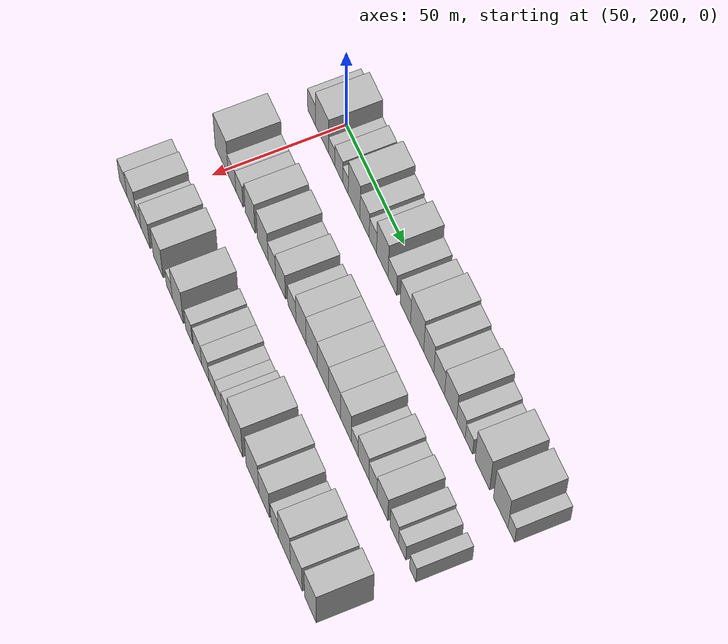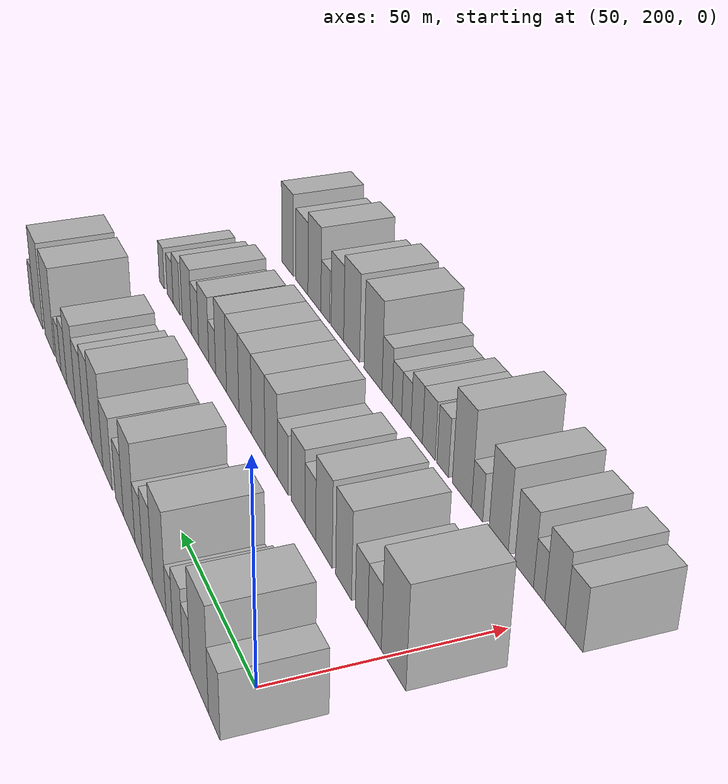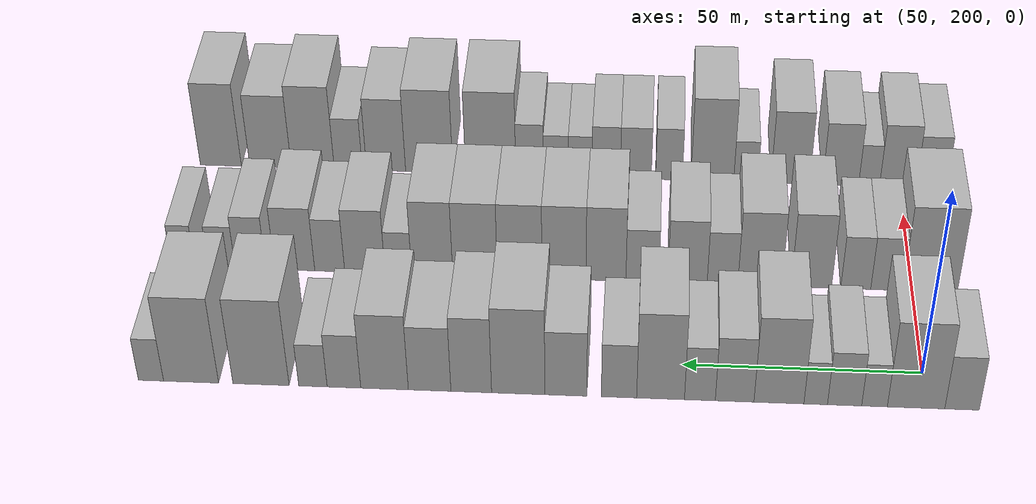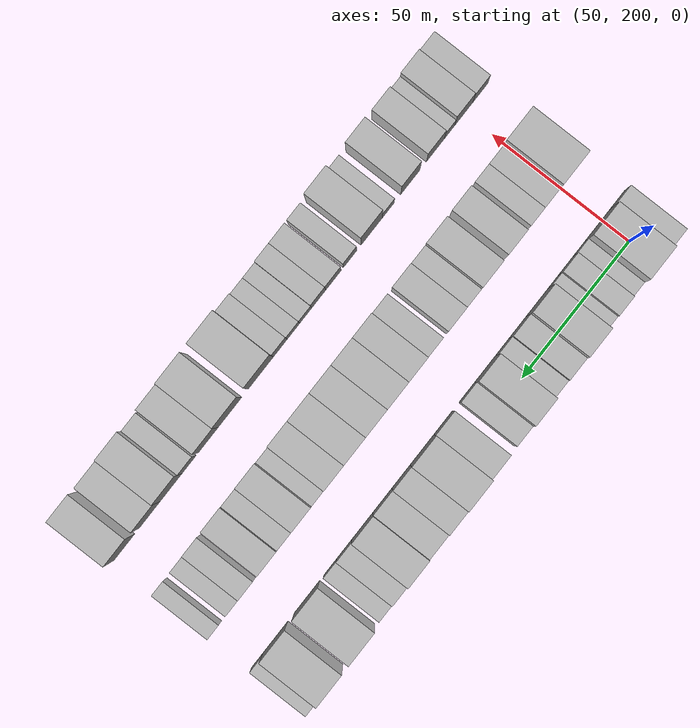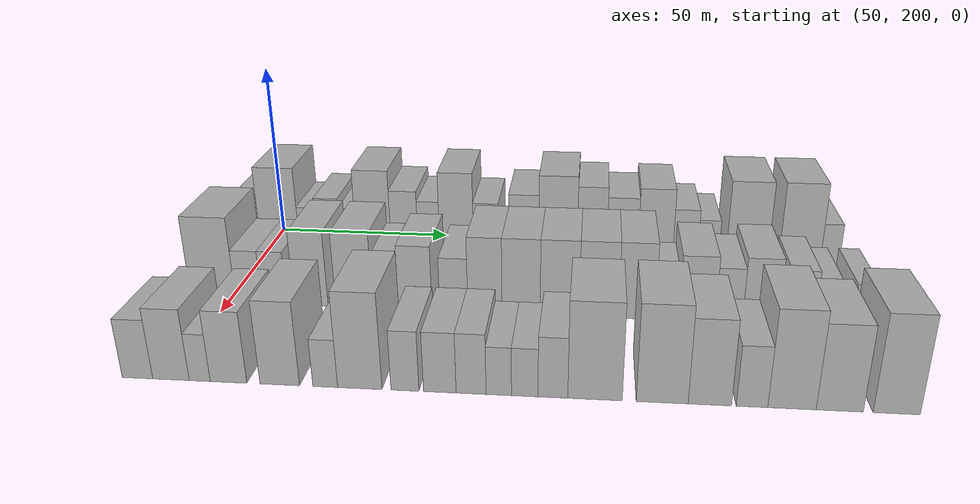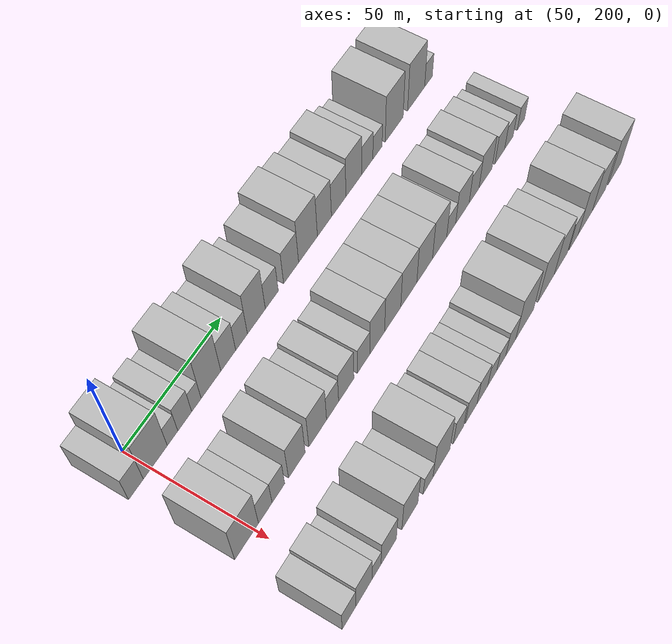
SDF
<sdf version="1.6">
 <world name="default">
  <model name="building_64">
   <static>1</static>
   <pose>50.0000 192.7966 0 0.000000 0.000000 0.000000</pose>
   <link name="link">
    <pose>0 0 7.50 0 0 0</pose>
    <collision name="collision"><geometry><box><size>20.0000 7.0280 15.0000</size></box></geometry></collision>
    <visual name="visual">
     <cast_shadows>0</cast_shadows>
     <geometry><box><size>20.0000 7.0280 15.0000</size></box></geometry>
     <material>
      <script>
       <uri>model://HANNAS_wall/materials/scripts</uri>
       <uri>model://HANNAS_wall/materials/textures</uri>
       <name>vrc/HANNAS_wall</name>
      </script>
     </material>
    </visual>
   </link>
  </model>
  <model name="building_65">
   <static>1</static>
   <pose>50.0000 202.1692 0 0.000000 0.000000 0.000000</pose>
   <link name="link">
    <pose>0 0 12.00 0 0 0</pose>
    <collision name="collision"><geometry><box><size>20.0000 11.7173 24.0000</size></box></geometry></collision>
    <visual name="visual">
     <cast_shadows>0</cast_shadows>
     <geometry><box><size>20.0000 11.7173 24.0000</size></box></geometry>
     <material>
      <script>
       <uri>model://HANNAS_wall/materials/scripts</uri>
       <uri>model://HANNAS_wall/materials/textures</uri>
       <name>vrc/HANNAS_wall</name>
      </script>
     </material>
    </visual>
   </link>
  </model>
  <model name="building_66">
   <static>1</static>
   <pose>50.0000 210.6475 0 0.000000 0.000000 0.000000</pose>
   <link name="link">
    <pose>0 0 6.00 0 0 0</pose>
    <collision name="collision"><geometry><box><size>20.0000 5.2393 12.0000</size></box></geometry></collision>
    <visual name="visual">
     <cast_shadows>0</cast_shadows>
     <geometry><box><size>20.0000 5.2393 12.0000</size></box></geometry>
     <material>
      <script>
       <uri>model://HANNAS_wall/materials/scripts</uri>
       <uri>model://HANNAS_wall/materials/textures</uri>
       <name>vrc/HANNAS_wall</name>
      </script>
     </material>
    </visual>
   </link>
  </model>
  <model name="building_67">
   <static>1</static>
   <pose>50.0000 216.7601 0 0.000000 0.000000 0.000000</pose>
   <link name="link">
    <pose>0 0 7.50 0 0 0</pose>
    <collision name="collision"><geometry><box><size>20.0000 6.9859 15.0000</size></box></geometry></collision>
    <visual name="visual">
     <cast_shadows>0</cast_shadows>
     <geometry><box><size>20.0000 6.9859 15.0000</size></box></geometry>
     <material>
      <script>
       <uri>model://HANNAS_wall/materials/scripts</uri>
       <uri>model://HANNAS_wall/materials/textures</uri>
       <name>vrc/HANNAS_wall</name>
      </script>
     </material>
    </visual>
   </link>
  </model>
  <model name="building_68">
   <static>1</static>
   <pose>50.0000 222.6624 0 0.000000 0.000000 0.000000</pose>
   <link name="link">
    <pose>0 0 6.00 0 0 0</pose>
    <collision name="collision"><geometry><box><size>20.0000 4.8188 12.0000</size></box></geometry></collision>
    <visual name="visual">
     <cast_shadows>0</cast_shadows>
     <geometry><box><size>20.0000 4.8188 12.0000</size></box></geometry>
     <material>
      <script>
       <uri>model://HANNAS_wall/materials/scripts</uri>
       <uri>model://HANNAS_wall/materials/textures</uri>
       <name>vrc/HANNAS_wall</name>
      </script>
     </material>
    </visual>
   </link>
  </model>
  <model name="building_69">
   <static>1</static>
   <pose>50.0000 230.1951 0 0.000000 0.000000 0.000000</pose>
   <link name="link">
    <pose>0 0 12.00 0 0 0</pose>
    <collision name="collision"><geometry><box><size>20.0000 10.2465 24.0000</size></box></geometry></collision>
    <visual name="visual">
     <cast_shadows>0</cast_shadows>
     <geometry><box><size>20.0000 10.2465 24.0000</size></box></geometry>
     <material>
      <script>
       <uri>model://HANNAS_wall/materials/scripts</uri>
       <uri>model://HANNAS_wall/materials/textures</uri>
       <name>vrc/HANNAS_wall</name>
      </script>
     </material>
    </visual>
   </link>
  </model>
  <model name="building_70">
   <static>1</static>
   <pose>50.0000 239.2846 0 0.000000 0.000000 0.000000</pose>
   <link name="link">
    <pose>0 0 9.00 0 0 0</pose>
    <collision name="collision"><geometry><box><size>20.0000 7.9326 18.0000</size></box></geometry></collision>
    <visual name="visual">
     <cast_shadows>0</cast_shadows>
     <geometry><box><size>20.0000 7.9326 18.0000</size></box></geometry>
     <material>
      <script>
       <uri>model://HANNAS_wall/materials/scripts</uri>
       <uri>model://HANNAS_wall/materials/textures</uri>
       <name>vrc/HANNAS_wall</name>
      </script>
     </material>
    </visual>
   </link>
  </model>
  <model name="building_71">
   <static>1</static>
   <pose>50.0000 246.4208 0 0.000000 0.000000 0.000000</pose>
   <link name="link">
    <pose>0 0 7.50 0 0 0</pose>
    <collision name="collision"><geometry><box><size>20.0000 6.3398 15.0000</size></box></geometry></collision>
    <visual name="visual">
     <cast_shadows>0</cast_shadows>
     <geometry><box><size>20.0000 6.3398 15.0000</size></box></geometry>
     <material>
      <script>
       <uri>model://HANNAS_wall/materials/scripts</uri>
       <uri>model://HANNAS_wall/materials/textures</uri>
       <name>vrc/HANNAS_wall</name>
      </script>
     </material>
    </visual>
   </link>
  </model>
  <model name="building_72">
   <static>1</static>
   <pose>50.0000 254.5148 0 0.000000 0.000000 0.000000</pose>
   <link name="link">
    <pose>0 0 12.00 0 0 0</pose>
    <collision name="collision"><geometry><box><size>20.0000 9.8482 24.0000</size></box></geometry></collision>
    <visual name="visual">
     <cast_shadows>0</cast_shadows>
     <geometry><box><size>20.0000 9.8482 24.0000</size></box></geometry>
     <material>
      <script>
       <uri>model://HANNAS_wall/materials/scripts</uri>
       <uri>model://HANNAS_wall/materials/textures</uri>
       <name>vrc/HANNAS_wall</name>
      </script>
     </material>
    </visual>
   </link>
  </model>
  <model name="building_73">
   <static>1</static>
   <pose>50.0000 263.0748 0 0.000000 0.000000 0.000000</pose>
   <link name="link">
    <pose>0 0 7.50 0 0 0</pose>
    <collision name="collision"><geometry><box><size>20.0000 7.2717 15.0000</size></box></geometry></collision>
    <visual name="visual">
     <cast_shadows>0</cast_shadows>
     <geometry><box><size>20.0000 7.2717 15.0000</size></box></geometry>
     <material>
      <script>
       <uri>model://HANNAS_wall/materials/scripts</uri>
       <uri>model://HANNAS_wall/materials/textures</uri>
       <name>vrc/HANNAS_wall</name>
      </script>
     </material>
    </visual>
   </link>
  </model>
  <model name="building_74">
   <static>1</static>
   <pose>50.0000 274.0269 0 0.000000 0.000000 0.000000</pose>
   <link name="link">
    <pose>0 0 9.00 0 0 0</pose>
    <collision name="collision"><geometry><box><size>20.0000 8.6325 18.0000</size></box></geometry></collision>
    <visual name="visual">
     <cast_shadows>0</cast_shadows>
     <geometry><box><size>20.0000 8.6325 18.0000</size></box></geometry>
     <material>
      <script>
       <uri>model://HANNAS_wall/materials/scripts</uri>
       <uri>model://HANNAS_wall/materials/textures</uri>
       <name>vrc/HANNAS_wall</name>
      </script>
     </material>
    </visual>
   </link>
  </model>
  <model name="building_75">
   <static>1</static>
   <pose>50.0000 283.8667 0 0.000000 0.000000 0.000000</pose>
   <link name="link">
    <pose>0 0 12.00 0 0 0</pose>
    <collision name="collision"><geometry><box><size>20.0000 11.0470 24.0000</size></box></geometry></collision>
    <visual name="visual">
     <cast_shadows>0</cast_shadows>
     <geometry><box><size>20.0000 11.0470 24.0000</size></box></geometry>
     <material>
      <script>
       <uri>model://HANNAS_wall/materials/scripts</uri>
       <uri>model://HANNAS_wall/materials/textures</uri>
       <name>vrc/HANNAS_wall</name>
      </script>
     </material>
    </visual>
   </link>
  </model>
  <model name="building_76">
   <static>1</static>
   <pose>50.0000 293.6061 0 0.000000 0.000000 0.000000</pose>
   <link name="link">
    <pose>0 0 10.50 0 0 0</pose>
    <collision name="collision"><geometry><box><size>20.0000 8.4318 21.0000</size></box></geometry></collision>
    <visual name="visual">
     <cast_shadows>0</cast_shadows>
     <geometry><box><size>20.0000 8.4318 21.0000</size></box></geometry>
     <material>
      <script>
       <uri>model://HANNAS_wall/materials/scripts</uri>
       <uri>model://HANNAS_wall/materials/textures</uri>
       <name>vrc/HANNAS_wall</name>
      </script>
     </material>
    </visual>
   </link>
  </model>
  <model name="building_77">
   <static>1</static>
   <pose>50.0000 302.2431 0 0.000000 0.000000 0.000000</pose>
   <link name="link">
    <pose>0 0 9.00 0 0 0</pose>
    <collision name="collision"><geometry><box><size>20.0000 8.8422 18.0000</size></box></geometry></collision>
    <visual name="visual">
     <cast_shadows>0</cast_shadows>
     <geometry><box><size>20.0000 8.8422 18.0000</size></box></geometry>
     <material>
      <script>
       <uri>model://HANNAS_wall/materials/scripts</uri>
       <uri>model://HANNAS_wall/materials/textures</uri>
       <name>vrc/HANNAS_wall</name>
      </script>
     </material>
    </visual>
   </link>
  </model>
  <model name="building_78">
   <static>1</static>
   <pose>50.0000 311.5995 0 0.000000 0.000000 0.000000</pose>
   <link name="link">
    <pose>0 0 10.50 0 0 0</pose>
    <collision name="collision"><geometry><box><size>20.0000 9.8705 21.0000</size></box></geometry></collision>
    <visual name="visual">
     <cast_shadows>0</cast_shadows>
     <geometry><box><size>20.0000 9.8705 21.0000</size></box></geometry>
     <material>
      <script>
       <uri>model://HANNAS_wall/materials/scripts</uri>
       <uri>model://HANNAS_wall/materials/textures</uri>
       <name>vrc/HANNAS_wall</name>
      </script>
     </material>
    </visual>
   </link>
  </model>
  <model name="building_79">
   <static>1</static>
   <pose>50.0000 320.0405 0 0.000000 0.000000 0.000000</pose>
   <link name="link">
    <pose>0 0 7.50 0 0 0</pose>
    <collision name="collision"><geometry><box><size>20.0000 7.0115 15.0000</size></box></geometry></collision>
    <visual name="visual">
     <cast_shadows>0</cast_shadows>
     <geometry><box><size>20.0000 7.0115 15.0000</size></box></geometry>
     <material>
      <script>
       <uri>model://HANNAS_wall/materials/scripts</uri>
       <uri>model://HANNAS_wall/materials/textures</uri>
       <name>vrc/HANNAS_wall</name>
      </script>
     </material>
    </visual>
   </link>
  </model>
  <model name="building_80">
   <static>1</static>
   <pose>50.0000 326.5141 0 0.000000 0.000000 0.000000</pose>
   <link name="link">
    <pose>0 0 6.00 0 0 0</pose>
    <collision name="collision"><geometry><box><size>20.0000 5.9358 12.0000</size></box></geometry></collision>
    <visual name="visual">
     <cast_shadows>0</cast_shadows>
     <geometry><box><size>20.0000 5.9358 12.0000</size></box></geometry>
     <material>
      <script>
       <uri>model://HANNAS_wall/materials/scripts</uri>
       <uri>model://HANNAS_wall/materials/textures</uri>
       <name>vrc/HANNAS_wall</name>
      </script>
     </material>
    </visual>
   </link>
  </model>
  <model name="building_81">
   <static>1</static>
   <pose>50.0000 337.3531 0 0.000000 0.000000 0.000000</pose>
   <link name="link">
    <pose>0 0 12.00 0 0 0</pose>
    <collision name="collision"><geometry><box><size>20.0000 11.7420 24.0000</size></box></geometry></collision>
    <visual name="visual">
     <cast_shadows>0</cast_shadows>
     <geometry><box><size>20.0000 11.7420 24.0000</size></box></geometry>
     <material>
      <script>
       <uri>model://HANNAS_wall/materials/scripts</uri>
       <uri>model://HANNAS_wall/materials/textures</uri>
       <name>vrc/HANNAS_wall</name>
      </script>
     </material>
    </visual>
   </link>
  </model>
  <model name="building_82">
   <static>1</static>
   <pose>50.0000 351.9843 0 0.000000 0.000000 0.000000</pose>
   <link name="link">
    <pose>0 0 12.00 0 0 0</pose>
    <collision name="collision"><geometry><box><size>20.0000 11.5206 24.0000</size></box></geometry></collision>
    <visual name="visual">
     <cast_shadows>0</cast_shadows>
     <geometry><box><size>20.0000 11.5206 24.0000</size></box></geometry>
     <material>
      <script>
       <uri>model://HANNAS_wall/materials/scripts</uri>
       <uri>model://HANNAS_wall/materials/textures</uri>
       <name>vrc/HANNAS_wall</name>
      </script>
     </material>
    </visual>
   </link>
  </model>
  <model name="building_83">
   <static>1</static>
   <pose>50.0000 360.3884 0 0.000000 0.000000 0.000000</pose>
   <link name="link">
    <pose>0 0 6.00 0 0 0</pose>
    <collision name="collision"><geometry><box><size>20.0000 5.2876 12.0000</size></box></geometry></collision>
    <visual name="visual">
     <cast_shadows>0</cast_shadows>
     <geometry><box><size>20.0000 5.2876 12.0000</size></box></geometry>
     <material>
      <script>
       <uri>model://HANNAS_wall/materials/scripts</uri>
       <uri>model://HANNAS_wall/materials/textures</uri>
       <name>vrc/HANNAS_wall</name>
      </script>
     </material>
    </visual>
   </link>
  </model>
  <model name="building_142">
   <static>1</static>
   <pose>85.0000 196.2128 0 0.000000 0.000000 0.000000</pose>
   <link name="link">
    <pose>0 0 12.00 0 0 0</pose>
    <collision name="collision"><geometry><box><size>20.0000 11.8825 24.0000</size></box></geometry></collision>
    <visual name="visual">
     <cast_shadows>0</cast_shadows>
     <geometry><box><size>20.0000 11.8825 24.0000</size></box></geometry>
     <material>
      <script>
       <uri>model://HANNAS_wall/materials/scripts</uri>
       <uri>model://HANNAS_wall/materials/textures</uri>
       <name>vrc/HANNAS_wall</name>
      </script>
     </material>
    </visual>
   </link>
  </model>
  <model name="building_143">
   <static>1</static>
   <pose>85.0000 205.6216 0 0.000000 0.000000 0.000000</pose>
   <link name="link">
    <pose>0 0 7.50 0 0 0</pose>
    <collision name="collision"><geometry><box><size>20.0000 6.9351 15.0000</size></box></geometry></collision>
    <visual name="visual">
     <cast_shadows>0</cast_shadows>
     <geometry><box><size>20.0000 6.9351 15.0000</size></box></geometry>
     <material>
      <script>
       <uri>model://HANNAS_wall/materials/scripts</uri>
       <uri>model://HANNAS_wall/materials/textures</uri>
       <name>vrc/HANNAS_wall</name>
      </script>
     </material>
    </visual>
   </link>
  </model>
  <model name="building_144">
   <static>1</static>
   <pose>85.0000 212.3532 0 0.000000 0.000000 0.000000</pose>
   <link name="link">
    <pose>0 0 7.50 0 0 0</pose>
    <collision name="collision"><geometry><box><size>20.0000 6.5281 15.0000</size></box></geometry></collision>
    <visual name="visual">
     <cast_shadows>0</cast_shadows>
     <geometry><box><size>20.0000 6.5281 15.0000</size></box></geometry>
     <material>
      <script>
       <uri>model://HANNAS_wall/materials/scripts</uri>
       <uri>model://HANNAS_wall/materials/textures</uri>
       <name>vrc/HANNAS_wall</name>
      </script>
     </material>
    </visual>
   </link>
  </model>
  <model name="building_145">
   <static>1</static>
   <pose>85.0000 222.0366 0 0.000000 0.000000 0.000000</pose>
   <link name="link">
    <pose>0 0 10.50 0 0 0</pose>
    <collision name="collision"><geometry><box><size>20.0000 8.8387 21.0000</size></box></geometry></collision>
    <visual name="visual">
     <cast_shadows>0</cast_shadows>
     <geometry><box><size>20.0000 8.8387 21.0000</size></box></geometry>
     <material>
      <script>
       <uri>model://HANNAS_wall/materials/scripts</uri>
       <uri>model://HANNAS_wall/materials/textures</uri>
       <name>vrc/HANNAS_wall</name>
      </script>
     </material>
    </visual>
   </link>
  </model>
  <model name="building_146">
   <static>1</static>
   <pose>85.0000 233.2596 0 0.000000 0.000000 0.000000</pose>
   <link name="link">
    <pose>0 0 10.50 0 0 0</pose>
    <collision name="collision"><geometry><box><size>20.0000 9.6074 21.0000</size></box></geometry></collision>
    <visual name="visual">
     <cast_shadows>0</cast_shadows>
     <geometry><box><size>20.0000 9.6074 21.0000</size></box></geometry>
     <material>
      <script>
       <uri>model://HANNAS_wall/materials/scripts</uri>
       <uri>model://HANNAS_wall/materials/textures</uri>
       <name>vrc/HANNAS_wall</name>
      </script>
     </material>
    </visual>
   </link>
  </model>
  <model name="building_147">
   <static>1</static>
   <pose>85.0000 241.4175 0 0.000000 0.000000 0.000000</pose>
   <link name="link">
    <pose>0 0 7.50 0 0 0</pose>
    <collision name="collision"><geometry><box><size>20.0000 6.7082 15.0000</size></box></geometry></collision>
    <visual name="visual">
     <cast_shadows>0</cast_shadows>
     <geometry><box><size>20.0000 6.7082 15.0000</size></box></geometry>
     <material>
      <script>
       <uri>model://HANNAS_wall/materials/scripts</uri>
       <uri>model://HANNAS_wall/materials/textures</uri>
       <name>vrc/HANNAS_wall</name>
      </script>
     </material>
    </visual>
   </link>
  </model>
  <model name="building_148">
   <static>1</static>
   <pose>85.0000 249.0754 0 0.000000 0.000000 0.000000</pose>
   <link name="link">
    <pose>0 0 9.00 0 0 0</pose>
    <collision name="collision"><geometry><box><size>20.0000 8.6076 18.0000</size></box></geometry></collision>
    <visual name="visual">
     <cast_shadows>0</cast_shadows>
     <geometry><box><size>20.0000 8.6076 18.0000</size></box></geometry>
     <material>
      <script>
       <uri>model://HANNAS_wall/materials/scripts</uri>
       <uri>model://HANNAS_wall/materials/textures</uri>
       <name>vrc/HANNAS_wall</name>
      </script>
     </material>
    </visual>
   </link>
  </model>
  <model name="building_149">
   <static>1</static>
   <pose>85.0000 258.9748 0 0.000000 0.000000 0.000000</pose>
   <link name="link">
    <pose>0 0 7.50 0 0 0</pose>
    <collision name="collision"><geometry><box><size>20.0000 7.1914 15.0000</size></box></geometry></collision>
    <visual name="visual">
     <cast_shadows>0</cast_shadows>
     <geometry><box><size>20.0000 7.1914 15.0000</size></box></geometry>
     <material>
      <script>
       <uri>model://HANNAS_wall/materials/scripts</uri>
       <uri>model://HANNAS_wall/materials/textures</uri>
       <name>vrc/HANNAS_wall</name>
      </script>
     </material>
    </visual>
   </link>
  </model>
  <model name="building_150">
   <static>1</static>
   <pose>85.0000 266.9386 0 0.000000 0.000000 0.000000</pose>
   <link name="link">
    <pose>0 0 10.50 0 0 0</pose>
    <collision name="collision"><geometry><box><size>20.0000 8.7362 21.0000</size></box></geometry></collision>
    <visual name="visual">
     <cast_shadows>0</cast_shadows>
     <geometry><box><size>20.0000 8.7362 21.0000</size></box></geometry>
     <material>
      <script>
       <uri>model://HANNAS_wall/materials/scripts</uri>
       <uri>model://HANNAS_wall/materials/textures</uri>
       <name>vrc/HANNAS_wall</name>
      </script>
     </material>
    </visual>
   </link>
  </model>
  <model name="building_151">
   <static>1</static>
   <pose>85.0000 276.1476 0 0.000000 0.000000 0.000000</pose>
   <link name="link">
    <pose>0 0 10.50 0 0 0</pose>
    <collision name="collision"><geometry><box><size>20.0000 9.6817 21.0000</size></box></geometry></collision>
    <visual name="visual">
     <cast_shadows>0</cast_shadows>
     <geometry><box><size>20.0000 9.6817 21.0000</size></box></geometry>
     <material>
      <script>
       <uri>model://HANNAS_wall/materials/scripts</uri>
       <uri>model://HANNAS_wall/materials/textures</uri>
       <name>vrc/HANNAS_wall</name>
      </script>
     </material>
    </visual>
   </link>
  </model>
  <model name="building_152">
   <static>1</static>
   <pose>85.0000 285.9078 0 0.000000 0.000000 0.000000</pose>
   <link name="link">
    <pose>0 0 10.50 0 0 0</pose>
    <collision name="collision"><geometry><box><size>20.0000 9.8389 21.0000</size></box></geometry></collision>
    <visual name="visual">
     <cast_shadows>0</cast_shadows>
     <geometry><box><size>20.0000 9.8389 21.0000</size></box></geometry>
     <material>
      <script>
       <uri>model://HANNAS_wall/materials/scripts</uri>
       <uri>model://HANNAS_wall/materials/textures</uri>
       <name>vrc/HANNAS_wall</name>
      </script>
     </material>
    </visual>
   </link>
  </model>
  <model name="building_153">
   <static>1</static>
   <pose>85.0000 295.7514 0 0.000000 0.000000 0.000000</pose>
   <link name="link">
    <pose>0 0 10.50 0 0 0</pose>
    <collision name="collision"><geometry><box><size>20.0000 9.8482 21.0000</size></box></geometry></collision>
    <visual name="visual">
     <cast_shadows>0</cast_shadows>
     <geometry><box><size>20.0000 9.8482 21.0000</size></box></geometry>
     <material>
      <script>
       <uri>model://HANNAS_wall/materials/scripts</uri>
       <uri>model://HANNAS_wall/materials/textures</uri>
       <name>vrc/HANNAS_wall</name>
      </script>
     </material>
    </visual>
   </link>
  </model>
  <model name="building_154">
   <static>1</static>
   <pose>85.0000 305.2164 0 0.000000 0.000000 0.000000</pose>
   <link name="link">
    <pose>0 0 10.50 0 0 0</pose>
    <collision name="collision"><geometry><box><size>20.0000 9.0819 21.0000</size></box></geometry></collision>
    <visual name="visual">
     <cast_shadows>0</cast_shadows>
     <geometry><box><size>20.0000 9.0819 21.0000</size></box></geometry>
     <material>
      <script>
       <uri>model://HANNAS_wall/materials/scripts</uri>
       <uri>model://HANNAS_wall/materials/textures</uri>
       <name>vrc/HANNAS_wall</name>
      </script>
     </material>
    </visual>
   </link>
  </model>
  <model name="building_155">
   <static>1</static>
   <pose>85.0000 312.7022 0 0.000000 0.000000 0.000000</pose>
   <link name="link">
    <pose>0 0 6.00 0 0 0</pose>
    <collision name="collision"><geometry><box><size>20.0000 5.8899 12.0000</size></box></geometry></collision>
    <visual name="visual">
     <cast_shadows>0</cast_shadows>
     <geometry><box><size>20.0000 5.8899 12.0000</size></box></geometry>
     <material>
      <script>
       <uri>model://HANNAS_wall/materials/scripts</uri>
       <uri>model://HANNAS_wall/materials/textures</uri>
       <name>vrc/HANNAS_wall</name>
      </script>
     </material>
    </visual>
   </link>
  </model>
  <model name="building_156">
   <static>1</static>
   <pose>85.0000 320.1122 0 0.000000 0.000000 0.000000</pose>
   <link name="link">
    <pose>0 0 9.00 0 0 0</pose>
    <collision name="collision"><geometry><box><size>20.0000 8.9300 18.0000</size></box></geometry></collision>
    <visual name="visual">
     <cast_shadows>0</cast_shadows>
     <geometry><box><size>20.0000 8.9300 18.0000</size></box></geometry>
     <material>
      <script>
       <uri>model://HANNAS_wall/materials/scripts</uri>
       <uri>model://HANNAS_wall/materials/textures</uri>
       <name>vrc/HANNAS_wall</name>
      </script>
     </material>
    </visual>
   </link>
  </model>
  <model name="building_157">
   <static>1</static>
   <pose>85.0000 327.8973 0 0.000000 0.000000 0.000000</pose>
   <link name="link">
    <pose>0 0 7.50 0 0 0</pose>
    <collision name="collision"><geometry><box><size>20.0000 6.6402 15.0000</size></box></geometry></collision>
    <visual name="visual">
     <cast_shadows>0</cast_shadows>
     <geometry><box><size>20.0000 6.6402 15.0000</size></box></geometry>
     <material>
      <script>
       <uri>model://HANNAS_wall/materials/scripts</uri>
       <uri>model://HANNAS_wall/materials/textures</uri>
       <name>vrc/HANNAS_wall</name>
      </script>
     </material>
    </visual>
   </link>
  </model>
  <model name="building_158">
   <static>1</static>
   <pose>85.0000 335.6396 0 0.000000 0.000000 0.000000</pose>
   <link name="link">
    <pose>0 0 9.00 0 0 0</pose>
    <collision name="collision"><geometry><box><size>20.0000 8.8443 18.0000</size></box></geometry></collision>
    <visual name="visual">
     <cast_shadows>0</cast_shadows>
     <geometry><box><size>20.0000 8.8443 18.0000</size></box></geometry>
     <material>
      <script>
       <uri>model://HANNAS_wall/materials/scripts</uri>
       <uri>model://HANNAS_wall/materials/textures</uri>
       <name>vrc/HANNAS_wall</name>
      </script>
     </material>
    </visual>
   </link>
  </model>
  <model name="building_159">
   <static>1</static>
   <pose>85.0000 345.4775 0 0.000000 0.000000 0.000000</pose>
   <link name="link">
    <pose>0 0 7.50 0 0 0</pose>
    <collision name="collision"><geometry><box><size>20.0000 6.8314 15.0000</size></box></geometry></collision>
    <visual name="visual">
     <cast_shadows>0</cast_shadows>
     <geometry><box><size>20.0000 6.8314 15.0000</size></box></geometry>
     <material>
      <script>
       <uri>model://HANNAS_wall/materials/scripts</uri>
       <uri>model://HANNAS_wall/materials/textures</uri>
       <name>vrc/HANNAS_wall</name>
      </script>
     </material>
    </visual>
   </link>
  </model>
  <model name="building_160">
   <static>1</static>
   <pose>85.0000 351.8860 0 0.000000 0.000000 0.000000</pose>
   <link name="link">
    <pose>0 0 6.00 0 0 0</pose>
    <collision name="collision"><geometry><box><size>20.0000 5.9858 12.0000</size></box></geometry></collision>
    <visual name="visual">
     <cast_shadows>0</cast_shadows>
     <geometry><box><size>20.0000 5.9858 12.0000</size></box></geometry>
     <material>
      <script>
       <uri>model://HANNAS_wall/materials/scripts</uri>
       <uri>model://HANNAS_wall/materials/textures</uri>
       <name>vrc/HANNAS_wall</name>
      </script>
     </material>
    </visual>
   </link>
  </model>
  <model name="building_161">
   <static>1</static>
   <pose>85.0000 360.4783 0 0.000000 0.000000 0.000000</pose>
   <link name="link">
    <pose>0 0 6.00 0 0 0</pose>
    <collision name="collision"><geometry><box><size>20.0000 5.1988 12.0000</size></box></geometry></collision>
    <visual name="visual">
     <cast_shadows>0</cast_shadows>
     <geometry><box><size>20.0000 5.1988 12.0000</size></box></geometry>
     <material>
      <script>
       <uri>model://HANNAS_wall/materials/scripts</uri>
       <uri>model://HANNAS_wall/materials/textures</uri>
       <name>vrc/HANNAS_wall</name>
      </script>
     </material>
    </visual>
   </link>
  </model>
  <model name="building_222">
   <static>1</static>
   <pose>120.0000 192.7727 0 0.000000 0.000000 0.000000</pose>
   <link name="link">
    <pose>0 0 7.50 0 0 0</pose>
    <collision name="collision"><geometry><box><size>20.0000 7.0726 15.0000</size></box></geometry></collision>
    <visual name="visual">
     <cast_shadows>0</cast_shadows>
     <geometry><box><size>20.0000 7.0726 15.0000</size></box></geometry>
     <material>
      <script>
       <uri>model://HANNAS_wall/materials/scripts</uri>
       <uri>model://HANNAS_wall/materials/textures</uri>
       <name>vrc/HANNAS_wall</name>
      </script>
     </material>
    </visual>
   </link>
  </model>
  <model name="building_223">
   <static>1</static>
   <pose>120.0000 200.5197 0 0.000000 0.000000 0.000000</pose>
   <link name="link">
    <pose>0 0 9.00 0 0 0</pose>
    <collision name="collision"><geometry><box><size>20.0000 8.4215 18.0000</size></box></geometry></collision>
    <visual name="visual">
     <cast_shadows>0</cast_shadows>
     <geometry><box><size>20.0000 8.4215 18.0000</size></box></geometry>
     <material>
      <script>
       <uri>model://HANNAS_wall/materials/scripts</uri>
       <uri>model://HANNAS_wall/materials/textures</uri>
       <name>vrc/HANNAS_wall</name>
      </script>
     </material>
    </visual>
   </link>
  </model>
  <model name="building_224">
   <static>1</static>
   <pose>120.0000 207.1421 0 0.000000 0.000000 0.000000</pose>
   <link name="link">
    <pose>0 0 6.00 0 0 0</pose>
    <collision name="collision"><geometry><box><size>20.0000 4.8233 12.0000</size></box></geometry></collision>
    <visual name="visual">
     <cast_shadows>0</cast_shadows>
     <geometry><box><size>20.0000 4.8233 12.0000</size></box></geometry>
     <material>
      <script>
       <uri>model://HANNAS_wall/materials/scripts</uri>
       <uri>model://HANNAS_wall/materials/textures</uri>
       <name>vrc/HANNAS_wall</name>
      </script>
     </material>
    </visual>
   </link>
  </model>
  <model name="building_225">
   <static>1</static>
   <pose>120.0000 213.7296 0 0.000000 0.000000 0.000000</pose>
   <link name="link">
    <pose>0 0 9.00 0 0 0</pose>
    <collision name="collision"><geometry><box><size>20.0000 8.3517 18.0000</size></box></geometry></collision>
    <visual name="visual">
     <cast_shadows>0</cast_shadows>
     <geometry><box><size>20.0000 8.3517 18.0000</size></box></geometry>
     <material>
      <script>
       <uri>model://HANNAS_wall/materials/scripts</uri>
       <uri>model://HANNAS_wall/materials/textures</uri>
       <name>vrc/HANNAS_wall</name>
      </script>
     </material>
    </visual>
   </link>
  </model>
  <model name="building_226">
   <static>1</static>
   <pose>120.0000 225.3911 0 0.000000 0.000000 0.000000</pose>
   <link name="link">
    <pose>0 0 10.50 0 0 0</pose>
    <collision name="collision"><geometry><box><size>20.0000 8.9713 21.0000</size></box></geometry></collision>
    <visual name="visual">
     <cast_shadows>0</cast_shadows>
     <geometry><box><size>20.0000 8.9713 21.0000</size></box></geometry>
     <material>
      <script>
       <uri>model://HANNAS_wall/materials/scripts</uri>
       <uri>model://HANNAS_wall/materials/textures</uri>
       <name>vrc/HANNAS_wall</name>
      </script>
     </material>
    </visual>
   </link>
  </model>
  <model name="building_227">
   <static>1</static>
   <pose>120.0000 235.6620 0 0.000000 0.000000 0.000000</pose>
   <link name="link">
    <pose>0 0 6.00 0 0 0</pose>
    <collision name="collision"><geometry><box><size>20.0000 5.5704 12.0000</size></box></geometry></collision>
    <visual name="visual">
     <cast_shadows>0</cast_shadows>
     <geometry><box><size>20.0000 5.5704 12.0000</size></box></geometry>
     <material>
      <script>
       <uri>model://HANNAS_wall/materials/scripts</uri>
       <uri>model://HANNAS_wall/materials/textures</uri>
       <name>vrc/HANNAS_wall</name>
      </script>
     </material>
    </visual>
   </link>
  </model>
  <model name="building_228">
   <static>1</static>
   <pose>120.0000 243.4087 0 0.000000 0.000000 0.000000</pose>
   <link name="link">
    <pose>0 0 12.00 0 0 0</pose>
    <collision name="collision"><geometry><box><size>20.0000 9.9230 24.0000</size></box></geometry></collision>
    <visual name="visual">
     <cast_shadows>0</cast_shadows>
     <geometry><box><size>20.0000 9.9230 24.0000</size></box></geometry>
     <material>
      <script>
       <uri>model://HANNAS_wall/materials/scripts</uri>
       <uri>model://HANNAS_wall/materials/textures</uri>
       <name>vrc/HANNAS_wall</name>
      </script>
     </material>
    </visual>
   </link>
  </model>
  <model name="building_229">
   <static>1</static>
   <pose>120.0000 253.4800 0 0.000000 0.000000 0.000000</pose>
   <link name="link">
    <pose>0 0 7.50 0 0 0</pose>
    <collision name="collision"><geometry><box><size>20.0000 6.2196 15.0000</size></box></geometry></collision>
    <visual name="visual">
     <cast_shadows>0</cast_shadows>
     <geometry><box><size>20.0000 6.2196 15.0000</size></box></geometry>
     <material>
      <script>
       <uri>model://HANNAS_wall/materials/scripts</uri>
       <uri>model://HANNAS_wall/materials/textures</uri>
       <name>vrc/HANNAS_wall</name>
      </script>
     </material>
    </visual>
   </link>
  </model>
  <model name="building_230">
   <static>1</static>
   <pose>120.0000 261.1863 0 0.000000 0.000000 0.000000</pose>
   <link name="link">
    <pose>0 0 7.50 0 0 0</pose>
    <collision name="collision"><geometry><box><size>20.0000 7.1932 15.0000</size></box></geometry></collision>
    <visual name="visual">
     <cast_shadows>0</cast_shadows>
     <geometry><box><size>20.0000 7.1932 15.0000</size></box></geometry>
     <material>
      <script>
       <uri>model://HANNAS_wall/materials/scripts</uri>
       <uri>model://HANNAS_wall/materials/textures</uri>
       <name>vrc/HANNAS_wall</name>
      </script>
     </material>
    </visual>
   </link>
  </model>
  <model name="building_231">
   <static>1</static>
   <pose>120.0000 268.0718 0 0.000000 0.000000 0.000000</pose>
   <link name="link">
    <pose>0 0 7.50 0 0 0</pose>
    <collision name="collision"><geometry><box><size>20.0000 6.5777 15.0000</size></box></geometry></collision>
    <visual name="visual">
     <cast_shadows>0</cast_shadows>
     <geometry><box><size>20.0000 6.5777 15.0000</size></box></geometry>
     <material>
      <script>
       <uri>model://HANNAS_wall/materials/scripts</uri>
       <uri>model://HANNAS_wall/materials/textures</uri>
       <name>vrc/HANNAS_wall</name>
      </script>
     </material>
    </visual>
   </link>
  </model>
  <model name="building_232">
   <static>1</static>
   <pose>120.0000 274.1382 0 0.000000 0.000000 0.000000</pose>
   <link name="link">
    <pose>0 0 6.00 0 0 0</pose>
    <collision name="collision"><geometry><box><size>20.0000 5.5551 12.0000</size></box></geometry></collision>
    <visual name="visual">
     <cast_shadows>0</cast_shadows>
     <geometry><box><size>20.0000 5.5551 12.0000</size></box></geometry>
     <material>
      <script>
       <uri>model://HANNAS_wall/materials/scripts</uri>
       <uri>model://HANNAS_wall/materials/textures</uri>
       <name>vrc/HANNAS_wall</name>
      </script>
     </material>
    </visual>
   </link>
  </model>
  <model name="building_233">
   <static>1</static>
   <pose>120.0000 279.8116 0 0.000000 0.000000 0.000000</pose>
   <link name="link">
    <pose>0 0 6.00 0 0 0</pose>
    <collision name="collision"><geometry><box><size>20.0000 5.7917 12.0000</size></box></geometry></collision>
    <visual name="visual">
     <cast_shadows>0</cast_shadows>
     <geometry><box><size>20.0000 5.7917 12.0000</size></box></geometry>
     <material>
      <script>
       <uri>model://HANNAS_wall/materials/scripts</uri>
       <uri>model://HANNAS_wall/materials/textures</uri>
       <name>vrc/HANNAS_wall</name>
      </script>
     </material>
    </visual>
   </link>
  </model>
  <model name="building_234">
   <static>1</static>
   <pose>120.0000 285.9356 0 0.000000 0.000000 0.000000</pose>
   <link name="link">
    <pose>0 0 7.50 0 0 0</pose>
    <collision name="collision"><geometry><box><size>20.0000 6.4562 15.0000</size></box></geometry></collision>
    <visual name="visual">
     <cast_shadows>0</cast_shadows>
     <geometry><box><size>20.0000 6.4562 15.0000</size></box></geometry>
     <material>
      <script>
       <uri>model://HANNAS_wall/materials/scripts</uri>
       <uri>model://HANNAS_wall/materials/textures</uri>
       <name>vrc/HANNAS_wall</name>
      </script>
     </material>
    </visual>
   </link>
  </model>
  <model name="building_235">
   <static>1</static>
   <pose>120.0000 295.0247 0 0.000000 0.000000 0.000000</pose>
   <link name="link">
    <pose>0 0 12.00 0 0 0</pose>
    <collision name="collision"><geometry><box><size>20.0000 11.7220 24.0000</size></box></geometry></collision>
    <visual name="visual">
     <cast_shadows>0</cast_shadows>
     <geometry><box><size>20.0000 11.7220 24.0000</size></box></geometry>
     <material>
      <script>
       <uri>model://HANNAS_wall/materials/scripts</uri>
       <uri>model://HANNAS_wall/materials/textures</uri>
       <name>vrc/HANNAS_wall</name>
      </script>
     </material>
    </visual>
   </link>
  </model>
  <model name="building_236">
   <static>1</static>
   <pose>120.0000 309.4213 0 0.000000 0.000000 0.000000</pose>
   <link name="link">
    <pose>0 0 12.00 0 0 0</pose>
    <collision name="collision"><geometry><box><size>20.0000 11.0711 24.0000</size></box></geometry></collision>
    <visual name="visual">
     <cast_shadows>0</cast_shadows>
     <geometry><box><size>20.0000 11.0711 24.0000</size></box></geometry>
     <material>
      <script>
       <uri>model://HANNAS_wall/materials/scripts</uri>
       <uri>model://HANNAS_wall/materials/textures</uri>
       <name>vrc/HANNAS_wall</name>
      </script>
     </material>
    </visual>
   </link>
  </model>
  <model name="building_237">
   <static>1</static>
   <pose>120.0000 319.5379 0 0.000000 0.000000 0.000000</pose>
   <link name="link">
    <pose>0 0 10.50 0 0 0</pose>
    <collision name="collision"><geometry><box><size>20.0000 9.1621 21.0000</size></box></geometry></collision>
    <visual name="visual">
     <cast_shadows>0</cast_shadows>
     <geometry><box><size>20.0000 9.1621 21.0000</size></box></geometry>
     <material>
      <script>
       <uri>model://HANNAS_wall/materials/scripts</uri>
       <uri>model://HANNAS_wall/materials/textures</uri>
       <name>vrc/HANNAS_wall</name>
      </script>
     </material>
    </visual>
   </link>
  </model>
  <model name="building_238">
   <static>1</static>
   <pose>120.0000 328.4225 0 0.000000 0.000000 0.000000</pose>
   <link name="link">
    <pose>0 0 7.50 0 0 0</pose>
    <collision name="collision"><geometry><box><size>20.0000 6.6072 15.0000</size></box></geometry></collision>
    <visual name="visual">
     <cast_shadows>0</cast_shadows>
     <geometry><box><size>20.0000 6.6072 15.0000</size></box></geometry>
     <material>
      <script>
       <uri>model://HANNAS_wall/materials/scripts</uri>
       <uri>model://HANNAS_wall/materials/textures</uri>
       <name>vrc/HANNAS_wall</name>
      </script>
     </material>
    </visual>
   </link>
  </model>
  <model name="building_239">
   <static>1</static>
   <pose>120.0000 336.7821 0 0.000000 0.000000 0.000000</pose>
   <link name="link">
    <pose>0 0 12.00 0 0 0</pose>
    <collision name="collision"><geometry><box><size>20.0000 10.1119 24.0000</size></box></geometry></collision>
    <visual name="visual">
     <cast_shadows>0</cast_shadows>
     <geometry><box><size>20.0000 10.1119 24.0000</size></box></geometry>
     <material>
      <script>
       <uri>model://HANNAS_wall/materials/scripts</uri>
       <uri>model://HANNAS_wall/materials/textures</uri>
       <name>vrc/HANNAS_wall</name>
      </script>
     </material>
    </visual>
   </link>
  </model>
  <model name="building_240">
   <static>1</static>
   <pose>120.0000 346.7321 0 0.000000 0.000000 0.000000</pose>
   <link name="link">
    <pose>0 0 10.50 0 0 0</pose>
    <collision name="collision"><geometry><box><size>20.0000 9.7881 21.0000</size></box></geometry></collision>
    <visual name="visual">
     <cast_shadows>0</cast_shadows>
     <geometry><box><size>20.0000 9.7881 21.0000</size></box></geometry>
     <material>
      <script>
       <uri>model://HANNAS_wall/materials/scripts</uri>
       <uri>model://HANNAS_wall/materials/textures</uri>
       <name>vrc/HANNAS_wall</name>
      </script>
     </material>
    </visual>
   </link>
  </model>
  <model name="building_241">
   <static>1</static>
   <pose>120.0000 358.4714 0 0.000000 0.000000 0.000000</pose>
   <link name="link">
    <pose>0 0 12.00 0 0 0</pose>
    <collision name="collision"><geometry><box><size>20.0000 9.6905 24.0000</size></box></geometry></collision>
    <visual name="visual">
     <cast_shadows>0</cast_shadows>
     <geometry><box><size>20.0000 9.6905 24.0000</size></box></geometry>
     <material>
      <script>
       <uri>model://HANNAS_wall/materials/scripts</uri>
       <uri>model://HANNAS_wall/materials/textures</uri>
       <name>vrc/HANNAS_wall</name>
      </script>
     </material>
    </visual>
   </link>
  </model>
 </world>
</sdf>
